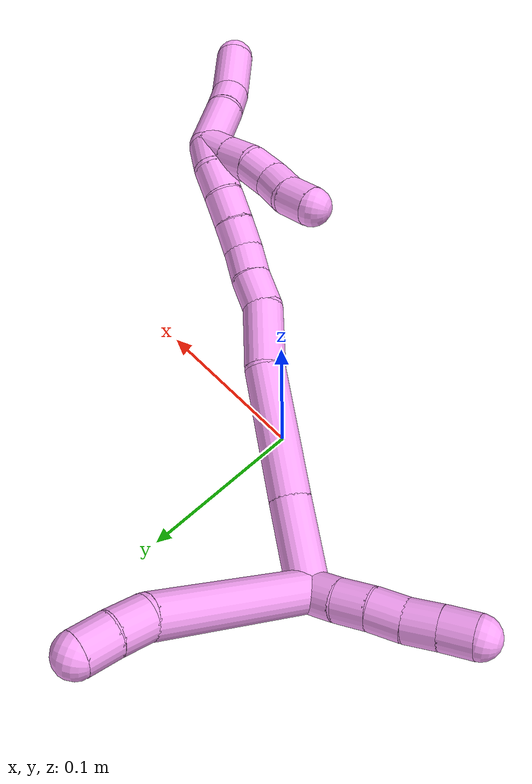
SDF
<sdf version="1.7">
 <world name="default">
  <model name="photoneo_s_sensor">
   <static>1</static>
   <pose>0 0 2 1.57079 1.57079 3.14159</pose>
   <link name="link">
    <inertial><mass>0.1</mass></inertial>
    <sensor name="sensor" type="depth">
     <update_rate>30</update_rate>
     <camera>
      <horizontal_fov>1.22</horizontal_fov>
      <image><width>1920</width><height>1200</height><format>B8G8R8</format></image>
      <clip><near>0.1</near><far>4</far></clip>
      <depth_camera><output>points</output></depth_camera>
     </camera>
     <plugin name="camera_plugin" filename="libgazebo_ros_depth_camera.so">
      <baseline>0.2</baseline>
      <alwaysOn>1</alwaysOn>
      <updateRate>0.0</updateRate>
      <cameraName>camera_ir</cameraName>
      <imageTopicName>/camera/color/image_raw</imageTopicName>
      <cameraInfoTopicName>/camera/color/camera_info</cameraInfoTopicName>
      <depthImageTopicName>/camera/depth/image_raw</depthImageTopicName>
      <depthImageCameraInfoTopicName>/camera/depth/camera_info</depthImageCameraInfoTopicName>
      <pointCloudTopicName>/camera/depth/points</pointCloudTopicName>
      <frameName>fr_optical</frameName>
      <pointCloudCutoff>0.1</pointCloudCutoff>
      <pointCloudCutoffMax>2.0</pointCloudCutoffMax>
      <distortionK1>0</distortionK1>
      <distortionK2>0</distortionK2>
      <distortionK3>0</distortionK3>
      <distortionT1>0</distortionT1>
      <distortionT2>0</distortionT2>
      <CxPrime>0</CxPrime>
      <Cx>0</Cx>
      <Cy>0</Cy>
      <focalLength>0</focalLength>
      <hackBaseline>0</hackBaseline>
     </plugin>
    </sensor>
   </link>
  </model>
  <model name="bin">
   <static>1</static>
   <link name="bottom">
    <collision name="collision-bottom">
     <pose>0 0 -0.01 0 -0 0</pose>
     <geometry><box><size>0.8 0.6 0.02</size></box></geometry>
     <surface>
      <friction><ode><mu>100</mu><mu2>100</mu2></ode></friction>
      <contact><collide_bitmask>65535</collide_bitmask></contact>
     </surface>
    </collision>
   </link>
   <link name="west_wall">
    <collision name="collision-west_wall">
     <pose>-0.41 0 0.1 0 -0 0</pose>
     <geometry><box><size>0.02 0.6 0.2</size></box></geometry>
     <surface>
      <friction><ode><mu>100</mu><mu2>100</mu2></ode></friction>
      <contact><collide_bitmask>65535</collide_bitmask></contact>
     </surface>
    </collision>
   </link>
   <link name="east_wall">
    <collision name="collision-east_wall">
     <pose>0.41 0 0.1 0 -0 0</pose>
     <geometry><box><size>0.02 0.6 0.2</size></box></geometry>
     <surface>
      <friction><ode><mu>100</mu><mu2>100</mu2></ode></friction>
      <contact><collide_bitmask>65535</collide_bitmask></contact>
     </surface>
    </collision>
   </link>
   <link name="south_wall">
    <collision name="collision-south_wall">
     <pose>0 -0.31 0.1 0 -0 0</pose>
     <geometry><box><size>0.8 0.02 0.2</size></box></geometry>
     <surface>
      <friction><ode><mu>100</mu><mu2>100</mu2></ode></friction>
      <contact><collide_bitmask>65535</collide_bitmask></contact>
     </surface>
    </collision>
   </link>
   <link name="north_wall">
    <collision name="collision-north_wall">
     <pose>0 0.31 0.1 0 -0 0</pose>
     <geometry><box><size>0.8 0.02 0.2</size></box></geometry>
     <surface>
      <friction><ode><mu>100</mu><mu2>100</mu2></ode></friction>
      <contact><collide_bitmask>65535</collide_bitmask></contact>
     </surface>
    </collision>
   </link>
  </model>
  <model name="4">
   <static>0</static>
   <link name="4">
    <collision name="collision-cylinder-e_1_2_8">
     <pose>-0.045227 -0.013849 0.027958 0.459909 -0.96691 -0.244578</pose>
     <geometry><cylinder><radius>0.0125</radius><length>0.109889</length></cylinder></geometry>
     <surface>
      <friction><ode><mu>1.16</mu><mu2>1.16</mu2><slip1>0</slip1><slip2>0</slip2></ode></friction>
      <contact><ode><kp>1e+06</kp><kd>1</kd><max_vel>0</max_vel><min_depth>0.001</min_depth></ode></contact>
     </surface>
    </collision>
    <visual name="visual-cylinder-e_1_2_8">
     <pose>-0.045227 -0.013849 0.027958 0.459909 -0.96691 -0.244578</pose>
     <geometry><cylinder><radius>0.0125</radius><length>0.109889</length></cylinder></geometry>
     <material><ambient>1 0.65098 0.996078 1</ambient></material>
    </visual>
    <collision name="collision-cylinder-e_2_8_9">
     <pose>-0.099414 -0.027615 0.060436 -0.018207 -1.10357 0.011208</pose>
     <geometry><cylinder><radius>0.0125</radius><length>0.020073</length></cylinder></geometry>
     <surface>
      <friction><ode><mu>1.16</mu><mu2>1.16</mu2><slip1>0</slip1><slip2>0</slip2></ode></friction>
      <contact><ode><kp>1e+06</kp><kd>1</kd><max_vel>0</max_vel><min_depth>0.001</min_depth></ode></contact>
     </surface>
    </collision>
    <visual name="visual-cylinder-e_2_8_9">
     <pose>-0.099414 -0.027615 0.060436 -0.018207 -1.10357 0.011208</pose>
     <geometry><cylinder><radius>0.0125</radius><length>0.020073</length></cylinder></geometry>
     <material><ambient>1 0.65098 0.996078 1</ambient></material>
    </visual>
    <collision name="collision-cylinder-e_3_9_6">
     <pose>-0.117211 -0.026397 0.06954 -0.242767 -1.07995 0.145972</pose>
     <geometry><cylinder><radius>0.0125</radius><length>0.020038</length></cylinder></geometry>
     <surface>
      <friction><ode><mu>1.16</mu><mu2>1.16</mu2><slip1>0</slip1><slip2>0</slip2></ode></friction>
      <contact><ode><kp>1e+06</kp><kd>1</kd><max_vel>0</max_vel><min_depth>0.001</min_depth></ode></contact>
     </surface>
    </collision>
    <visual name="visual-cylinder-e_3_9_6">
     <pose>-0.117211 -0.026397 0.06954 -0.242767 -1.07995 0.145972</pose>
     <geometry><cylinder><radius>0.0125</radius><length>0.020038</length></cylinder></geometry>
     <material><ambient>1 0.65098 0.996078 1</ambient></material>
    </visual>
    <collision name="collision-cylinder-e_1_2_10">
     <pose>-0.002398 -0.002347 -0.00942 2.89748 -0.242116 -1.56248</pose>
     <geometry><cylinder><radius>0.0125</radius><length>0.02</length></cylinder></geometry>
     <surface>
      <friction><ode><mu>1.16</mu><mu2>1.16</mu2><slip1>0</slip1><slip2>0</slip2></ode></friction>
      <contact><ode><kp>1e+06</kp><kd>1</kd><max_vel>0</max_vel><min_depth>0.001</min_depth></ode></contact>
     </surface>
    </collision>
    <visual name="visual-cylinder-e_1_2_10">
     <pose>-0.002398 -0.002347 -0.00942 2.89748 -0.242116 -1.56248</pose>
     <geometry><cylinder><radius>0.0125</radius><length>0.02</length></cylinder></geometry>
     <material><ambient>1 0.65098 0.996078 1</ambient></material>
    </visual>
    <collision name="collision-cylinder-e_2_10_11">
     <pose>-0.006027 -0.00677 -0.028545 2.93075 -0.123499 -1.0576</pose>
     <geometry><cylinder><radius>0.0125</radius><length>0.02</length></cylinder></geometry>
     <surface>
      <friction><ode><mu>1.16</mu><mu2>1.16</mu2><slip1>0</slip1><slip2>0</slip2></ode></friction>
      <contact><ode><kp>1e+06</kp><kd>1</kd><max_vel>0</max_vel><min_depth>0.001</min_depth></ode></contact>
     </surface>
    </collision>
    <visual name="visual-cylinder-e_2_10_11">
     <pose>-0.006027 -0.00677 -0.028545 2.93075 -0.123499 -1.0576</pose>
     <geometry><cylinder><radius>0.0125</radius><length>0.02</length></cylinder></geometry>
     <material><ambient>1 0.65098 0.996078 1</ambient></material>
    </visual>
    <collision name="collision-cylinder-e_3_11_12">
     <pose>-0.008392 -0.009889 -0.04813 3.03652 -0.113569 -1.64863</pose>
     <geometry><cylinder><radius>0.0125</radius><length>0.02</length></cylinder></geometry>
     <surface>
      <friction><ode><mu>1.16</mu><mu2>1.16</mu2><slip1>0</slip1><slip2>0</slip2></ode></friction>
      <contact><ode><kp>1e+06</kp><kd>1</kd><max_vel>0</max_vel><min_depth>0.001</min_depth></ode></contact>
     </surface>
    </collision>
    <visual name="visual-cylinder-e_3_11_12">
     <pose>-0.008392 -0.009889 -0.04813 3.03652 -0.113569 -1.64863</pose>
     <geometry><cylinder><radius>0.0125</radius><length>0.02</length></cylinder></geometry>
     <material><ambient>1 0.65098 0.996078 1</ambient></material>
    </visual>
    <collision name="collision-cylinder-e_4_12_13">
     <pose>-0.010139 -0.013067 -0.067761 2.92589 -0.061354 -0.552354</pose>
     <geometry><cylinder><radius>0.0125</radius><length>0.02</length></cylinder></geometry>
     <surface>
      <friction><ode><mu>1.16</mu><mu2>1.16</mu2><slip1>0</slip1><slip2>0</slip2></ode></friction>
      <contact><ode><kp>1e+06</kp><kd>1</kd><max_vel>0</max_vel><min_depth>0.001</min_depth></ode></contact>
     </surface>
    </collision>
    <visual name="visual-cylinder-e_4_12_13">
     <pose>-0.010139 -0.013067 -0.067761 2.92589 -0.061354 -0.552354</pose>
     <geometry><cylinder><radius>0.0125</radius><length>0.02</length></cylinder></geometry>
     <material><ambient>1 0.65098 0.996078 1</ambient></material>
    </visual>
    <collision name="collision-cylinder-e_5_13_5">
     <pose>-0.011682 -0.017122 -0.08728 2.94771 -0.093213 -0.89442</pose>
     <geometry><cylinder><radius>0.0125</radius><length>0.02</length></cylinder></geometry>
     <surface>
      <friction><ode><mu>1.16</mu><mu2>1.16</mu2><slip1>0</slip1><slip2>0</slip2></ode></friction>
      <contact><ode><kp>1e+06</kp><kd>1</kd><max_vel>0</max_vel><min_depth>0.001</min_depth></ode></contact>
     </surface>
    </collision>
    <visual name="visual-cylinder-e_5_13_5">
     <pose>-0.011682 -0.017122 -0.08728 2.94771 -0.093213 -0.89442</pose>
     <geometry><cylinder><radius>0.0125</radius><length>0.02</length></cylinder></geometry>
     <material><ambient>1 0.65098 0.996078 1</ambient></material>
    </visual>
    <collision name="collision-cylinder-e_1_2_14">
     <pose>0.016485 -0.015362 0.013823 0.838075 0.673321 0.309289</pose>
     <geometry><cylinder><radius>0.0125</radius><length>0.05287</length></cylinder></geometry>
     <surface>
      <friction><ode><mu>1.16</mu><mu2>1.16</mu2><slip1>0</slip1><slip2>0</slip2></ode></friction>
      <contact><ode><kp>1e+06</kp><kd>1</kd><max_vel>0</max_vel><min_depth>0.001</min_depth></ode></contact>
     </surface>
    </collision>
    <visual name="visual-cylinder-e_1_2_14">
     <pose>0.016485 -0.015362 0.013823 0.838075 0.673321 0.309289</pose>
     <geometry><cylinder><radius>0.0125</radius><length>0.05287</length></cylinder></geometry>
     <material><ambient>1 0.65098 0.996078 1</ambient></material>
    </visual>
    <collision name="collision-cylinder-e_2_14_15">
     <pose>0.05743 -0.055745 0.048398 0.878404 0.645095 0.311493</pose>
     <geometry><cylinder><radius>0.0125</radius><length>0.081365</length></cylinder></geometry>
     <surface>
      <friction><ode><mu>1.16</mu><mu2>1.16</mu2><slip1>0</slip1><slip2>0</slip2></ode></friction>
      <contact><ode><kp>1e+06</kp><kd>1</kd><max_vel>0</max_vel><min_depth>0.001</min_depth></ode></contact>
     </surface>
    </collision>
    <visual name="visual-cylinder-e_2_14_15">
     <pose>0.05743 -0.055745 0.048398 0.878404 0.645095 0.311493</pose>
     <geometry><cylinder><radius>0.0125</radius><length>0.081365</length></cylinder></geometry>
     <material><ambient>1 0.65098 0.996078 1</ambient></material>
    </visual>
    <collision name="collision-cylinder-e_3_15_16">
     <pose>0.097961 -0.092106 0.077805 0.918888 0.844813 0.437628</pose>
     <geometry><cylinder><radius>0.0125</radius><length>0.042974</length></cylinder></geometry>
     <surface>
      <friction><ode><mu>1.16</mu><mu2>1.16</mu2><slip1>0</slip1><slip2>0</slip2></ode></friction>
      <contact><ode><kp>1e+06</kp><kd>1</kd><max_vel>0</max_vel><min_depth>0.001</min_depth></ode></contact>
     </surface>
    </collision>
    <visual name="visual-cylinder-e_3_15_16">
     <pose>0.097961 -0.092106 0.077805 0.918888 0.844813 0.437628</pose>
     <geometry><cylinder><radius>0.0125</radius><length>0.042974</length></cylinder></geometry>
     <material><ambient>1 0.65098 0.996078 1</ambient></material>
    </visual>
    <collision name="collision-cylinder-e_4_16_17">
     <pose>0.120147 -0.10919 0.093677 0.672236 0.585544 0.209854</pose>
     <geometry><cylinder><radius>0.0125</radius><length>0.022138</length></cylinder></geometry>
     <surface>
      <friction><ode><mu>1.16</mu><mu2>1.16</mu2><slip1>0</slip1><slip2>0</slip2></ode></friction>
      <contact><ode><kp>1e+06</kp><kd>1</kd><max_vel>0</max_vel><min_depth>0.001</min_depth></ode></contact>
     </surface>
    </collision>
    <visual name="visual-cylinder-e_4_16_17">
     <pose>0.120147 -0.10919 0.093677 0.672236 0.585544 0.209854</pose>
     <geometry><cylinder><radius>0.0125</radius><length>0.022138</length></cylinder></geometry>
     <material><ambient>1 0.65098 0.996078 1</ambient></material>
    </visual>
    <collision name="collision-cylinder-e_5_17_18">
     <pose>0.132789 -0.120245 0.106797 0.732655 0.687904 0.273124</pose>
     <geometry><cylinder><radius>0.0125</radius><length>0.02055</length></cylinder></geometry>
     <surface>
      <friction><ode><mu>1.16</mu><mu2>1.16</mu2><slip1>0</slip1><slip2>0</slip2></ode></friction>
      <contact><ode><kp>1e+06</kp><kd>1</kd><max_vel>0</max_vel><min_depth>0.001</min_depth></ode></contact>
     </surface>
    </collision>
    <visual name="visual-cylinder-e_5_17_18">
     <pose>0.132789 -0.120245 0.106797 0.732655 0.687904 0.273124</pose>
     <geometry><cylinder><radius>0.0125</radius><length>0.02055</length></cylinder></geometry>
     <material><ambient>1 0.65098 0.996078 1</ambient></material>
    </visual>
    <collision name="collision-cylinder-e_6_18_19">
     <pose>0.143147 -0.132723 0.118604 0.881666 0.391517 0.18657</pose>
     <geometry><cylinder><radius>0.0125</radius><length>0.020097</length></cylinder></geometry>
     <surface>
      <friction><ode><mu>1.16</mu><mu2>1.16</mu2><slip1>0</slip1><slip2>0</slip2></ode></friction>
      <contact><ode><kp>1e+06</kp><kd>1</kd><max_vel>0</max_vel><min_depth>0.001</min_depth></ode></contact>
     </surface>
    </collision>
    <visual name="visual-cylinder-e_6_18_19">
     <pose>0.143147 -0.132723 0.118604 0.881666 0.391517 0.18657</pose>
     <geometry><cylinder><radius>0.0125</radius><length>0.020097</length></cylinder></geometry>
     <material><ambient>1 0.65098 0.996078 1</ambient></material>
    </visual>
    <collision name="collision-cylinder-e_7_19_20">
     <pose>0.151188 -0.146583 0.130639 0.829194 0.434099 0.193502</pose>
     <geometry><cylinder><radius>0.0125</radius><length>0.020003</length></cylinder></geometry>
     <surface>
      <friction><ode><mu>1.16</mu><mu2>1.16</mu2><slip1>0</slip1><slip2>0</slip2></ode></friction>
      <contact><ode><kp>1e+06</kp><kd>1</kd><max_vel>0</max_vel><min_depth>0.001</min_depth></ode></contact>
     </surface>
    </collision>
    <visual name="visual-cylinder-e_7_19_20">
     <pose>0.151188 -0.146583 0.130639 0.829194 0.434099 0.193502</pose>
     <geometry><cylinder><radius>0.0125</radius><length>0.020003</length></cylinder></geometry>
     <material><ambient>1 0.65098 0.996078 1</ambient></material>
    </visual>
    <collision name="collision-cylinder-e_8_20_21">
     <pose>0.160452 -0.159035 0.14319 0.731269 0.530204 0.207137</pose>
     <geometry><cylinder><radius>0.0125</radius><length>0.02</length></cylinder></geometry>
     <surface>
      <friction><ode><mu>1.16</mu><mu2>1.16</mu2><slip1>0</slip1><slip2>0</slip2></ode></friction>
      <contact><ode><kp>1e+06</kp><kd>1</kd><max_vel>0</max_vel><min_depth>0.001</min_depth></ode></contact>
     </surface>
    </collision>
    <visual name="visual-cylinder-e_8_20_21">
     <pose>0.160452 -0.159035 0.14319 0.731269 0.530204 0.207137</pose>
     <geometry><cylinder><radius>0.0125</radius><length>0.02</length></cylinder></geometry>
     <material><ambient>1 0.65098 0.996078 1</ambient></material>
    </visual>
    <collision name="collision-cylinder-e_9_21_1">
     <pose>0.172581 -0.169214 0.155132 0.674919 0.785509 0.288703</pose>
     <geometry><cylinder><radius>0.0125</radius><length>0.020002</length></cylinder></geometry>
     <surface>
      <friction><ode><mu>1.16</mu><mu2>1.16</mu2><slip1>0</slip1><slip2>0</slip2></ode></friction>
      <contact><ode><kp>1e+06</kp><kd>1</kd><max_vel>0</max_vel><min_depth>0.001</min_depth></ode></contact>
     </surface>
    </collision>
    <visual name="visual-cylinder-e_9_21_1">
     <pose>0.172581 -0.169214 0.155132 0.674919 0.785509 0.288703</pose>
     <geometry><cylinder><radius>0.0125</radius><length>0.020002</length></cylinder></geometry>
     <material><ambient>1 0.65098 0.996078 1</ambient></material>
    </visual>
    <collision name="collision-cylinder-e_1_1_22">
     <pose>0.196728 -0.181034 0.163337 1.22284 1.13873 0.84356</pose>
     <geometry><cylinder><radius>0.0125</radius><length>0.037605</length></cylinder></geometry>
     <surface>
      <friction><ode><mu>1.16</mu><mu2>1.16</mu2><slip1>0</slip1><slip2>0</slip2></ode></friction>
      <contact><ode><kp>1e+06</kp><kd>1</kd><max_vel>0</max_vel><min_depth>0.001</min_depth></ode></contact>
     </surface>
    </collision>
    <visual name="visual-cylinder-e_1_1_22">
     <pose>0.196728 -0.181034 0.163337 1.22284 1.13873 0.84356</pose>
     <geometry><cylinder><radius>0.0125</radius><length>0.037605</length></cylinder></geometry>
     <material><ambient>1 0.65098 0.996078 1</ambient></material>
    </visual>
    <collision name="collision-cylinder-e_2_22_23">
     <pose>0.225205 -0.190717 0.169189 0.624125 1.24099 0.453182</pose>
     <geometry><cylinder><radius>0.0125</radius><length>0.024104</length></cylinder></geometry>
     <surface>
      <friction><ode><mu>1.16</mu><mu2>1.16</mu2><slip1>0</slip1><slip2>0</slip2></ode></friction>
      <contact><ode><kp>1e+06</kp><kd>1</kd><max_vel>0</max_vel><min_depth>0.001</min_depth></ode></contact>
     </surface>
    </collision>
    <visual name="visual-cylinder-e_2_22_23">
     <pose>0.225205 -0.190717 0.169189 0.624125 1.24099 0.453182</pose>
     <geometry><cylinder><radius>0.0125</radius><length>0.024104</length></cylinder></geometry>
     <material><ambient>1 0.65098 0.996078 1</ambient></material>
    </visual>
    <collision name="collision-cylinder-e_3_23_4">
     <pose>0.252391 -0.202026 0.178351 0.98469 0.969127 0.550422</pose>
     <geometry><cylinder><radius>0.0125</radius><length>0.038291</length></cylinder></geometry>
     <surface>
      <friction><ode><mu>1.16</mu><mu2>1.16</mu2><slip1>0</slip1><slip2>0</slip2></ode></friction>
      <contact><ode><kp>1e+06</kp><kd>1</kd><max_vel>0</max_vel><min_depth>0.001</min_depth></ode></contact>
     </surface>
    </collision>
    <visual name="visual-cylinder-e_3_23_4">
     <pose>0.252391 -0.202026 0.178351 0.98469 0.969127 0.550422</pose>
     <geometry><cylinder><radius>0.0125</radius><length>0.038291</length></cylinder></geometry>
     <material><ambient>1 0.65098 0.996078 1</ambient></material>
    </visual>
    <collision name="collision-cylinder-e_1_1_24">
     <pose>0.175948 -0.173608 0.151364 -3.13897 -0.379655 3.12796</pose>
     <geometry><cylinder><radius>0.0125</radius><length>0.02</length></cylinder></geometry>
     <surface>
      <friction><ode><mu>1.16</mu><mu2>1.16</mu2><slip1>0</slip1><slip2>0</slip2></ode></friction>
      <contact><ode><kp>1e+06</kp><kd>1</kd><max_vel>0</max_vel><min_depth>0.001</min_depth></ode></contact>
     </surface>
    </collision>
    <visual name="visual-cylinder-e_1_1_24">
     <pose>0.175948 -0.173608 0.151364 -3.13897 -0.379655 3.12796</pose>
     <geometry><cylinder><radius>0.0125</radius><length>0.02</length></cylinder></geometry>
     <material><ambient>1 0.65098 0.996078 1</ambient></material>
    </visual>
    <collision name="collision-cylinder-e_2_24_25">
     <pose>0.168568 -0.173932 0.132783 3.10414 -0.376224 -2.94547</pose>
     <geometry><cylinder><radius>0.0125</radius><length>0.02</length></cylinder></geometry>
     <surface>
      <friction><ode><mu>1.16</mu><mu2>1.16</mu2><slip1>0</slip1><slip2>0</slip2></ode></friction>
      <contact><ode><kp>1e+06</kp><kd>1</kd><max_vel>0</max_vel><min_depth>0.001</min_depth></ode></contact>
     </surface>
    </collision>
    <visual name="visual-cylinder-e_2_24_25">
     <pose>0.168568 -0.173932 0.132783 3.10414 -0.376224 -2.94547</pose>
     <geometry><cylinder><radius>0.0125</radius><length>0.02</length></cylinder></geometry>
     <material><ambient>1 0.65098 0.996078 1</ambient></material>
    </visual>
    <collision name="collision-cylinder-e_3_25_26">
     <pose>0.161241 -0.172115 0.114435 -2.9069 -0.37393 2.02703</pose>
     <geometry><cylinder><radius>0.0125</radius><length>0.02</length></cylinder></geometry>
     <surface>
      <friction><ode><mu>1.16</mu><mu2>1.16</mu2><slip1>0</slip1><slip2>0</slip2></ode></friction>
      <contact><ode><kp>1e+06</kp><kd>1</kd><max_vel>0</max_vel><min_depth>0.001</min_depth></ode></contact>
     </surface>
    </collision>
    <visual name="visual-cylinder-e_3_25_26">
     <pose>0.161241 -0.172115 0.114435 -2.9069 -0.37393 2.02703</pose>
     <geometry><cylinder><radius>0.0125</radius><length>0.02</length></cylinder></geometry>
     <material><ambient>1 0.65098 0.996078 1</ambient></material>
    </visual>
    <collision name="collision-cylinder-e_4_26_27">
     <pose>0.151618 -0.168641 0.097466 -2.97757 -0.639754 2.65514</pose>
     <geometry><cylinder><radius>0.0125</radius><length>0.02</length></cylinder></geometry>
     <surface>
      <friction><ode><mu>1.16</mu><mu2>1.16</mu2><slip1>0</slip1><slip2>0</slip2></ode></friction>
      <contact><ode><kp>1e+06</kp><kd>1</kd><max_vel>0</max_vel><min_depth>0.001</min_depth></ode></contact>
     </surface>
    </collision>
    <visual name="visual-cylinder-e_4_26_27">
     <pose>0.151618 -0.168641 0.097466 -2.97757 -0.639754 2.65514</pose>
     <geometry><cylinder><radius>0.0125</radius><length>0.02</length></cylinder></geometry>
     <material><ambient>1 0.65098 0.996078 1</ambient></material>
    </visual>
    <collision name="collision-cylinder-e_5_27_3">
     <pose>0.141757 -0.167225 0.08034 -3.1301 -0.399629 3.08488</pose>
     <geometry><cylinder><radius>0.0125</radius><length>0.02</length></cylinder></geometry>
     <surface>
      <friction><ode><mu>1.16</mu><mu2>1.16</mu2><slip1>0</slip1><slip2>0</slip2></ode></friction>
      <contact><ode><kp>1e+06</kp><kd>1</kd><max_vel>0</max_vel><min_depth>0.001</min_depth></ode></contact>
     </surface>
    </collision>
    <visual name="visual-cylinder-e_5_27_3">
     <pose>0.141757 -0.167225 0.08034 -3.1301 -0.399629 3.08488</pose>
     <geometry><cylinder><radius>0.0125</radius><length>0.02</length></cylinder></geometry>
     <material><ambient>1 0.65098 0.996078 1</ambient></material>
    </visual>
    <collision name="collision-sphere-3">
     <pose>0.137867 -0.167119 0.071128 0 -0 0</pose>
     <geometry><sphere><radius>0.0125</radius></sphere></geometry>
     <surface>
      <friction><ode><mu>1.16</mu><mu2>1.16</mu2><slip1>0</slip1><slip2>0</slip2></ode></friction>
      <contact><ode><kp>1e+06</kp><kd>1</kd><max_vel>0</max_vel><min_depth>0.001</min_depth></ode></contact>
     </surface>
    </collision>
    <visual name="visual-sphere-3">
     <pose>0.137867 -0.167119 0.071128 0 -0 0</pose>
     <geometry><sphere><radius>0.0125</radius></sphere></geometry>
     <material><ambient>1 0.65098 0.996078 1</ambient></material>
    </visual>
    <collision name="collision-sphere-27">
     <pose>0.145648 -0.167331 0.089551 0 -0 0</pose>
     <geometry><sphere><radius>0.0125</radius></sphere></geometry>
     <surface>
      <friction><ode><mu>1.16</mu><mu2>1.16</mu2><slip1>0</slip1><slip2>0</slip2></ode></friction>
      <contact><ode><kp>1e+06</kp><kd>1</kd><max_vel>0</max_vel><min_depth>0.001</min_depth></ode></contact>
     </surface>
    </collision>
    <visual name="visual-sphere-27">
     <pose>0.145648 -0.167331 0.089551 0 -0 0</pose>
     <geometry><sphere><radius>0.0125</radius></sphere></geometry>
     <material><ambient>1 0.65098 0.996078 1</ambient></material>
    </visual>
    <collision name="collision-sphere-26">
     <pose>0.157588 -0.169951 0.105381 0 -0 0</pose>
     <geometry><sphere><radius>0.0125</radius></sphere></geometry>
     <surface>
      <friction><ode><mu>1.16</mu><mu2>1.16</mu2><slip1>0</slip1><slip2>0</slip2></ode></friction>
      <contact><ode><kp>1e+06</kp><kd>1</kd><max_vel>0</max_vel><min_depth>0.001</min_depth></ode></contact>
     </surface>
    </collision>
    <visual name="visual-sphere-26">
     <pose>0.157588 -0.169951 0.105381 0 -0 0</pose>
     <geometry><sphere><radius>0.0125</radius></sphere></geometry>
     <material><ambient>1 0.65098 0.996078 1</ambient></material>
    </visual>
    <collision name="collision-sphere-25">
     <pose>0.164894 -0.17428 0.123488 0 -0 0</pose>
     <geometry><sphere><radius>0.0125</radius></sphere></geometry>
     <surface>
      <friction><ode><mu>1.16</mu><mu2>1.16</mu2><slip1>0</slip1><slip2>0</slip2></ode></friction>
      <contact><ode><kp>1e+06</kp><kd>1</kd><max_vel>0</max_vel><min_depth>0.001</min_depth></ode></contact>
     </surface>
    </collision>
    <visual name="visual-sphere-25">
     <pose>0.164894 -0.17428 0.123488 0 -0 0</pose>
     <geometry><sphere><radius>0.0125</radius></sphere></geometry>
     <material><ambient>1 0.65098 0.996078 1</ambient></material>
    </visual>
    <collision name="collision-sphere-24">
     <pose>0.172242 -0.173584 0.142077 0 -0 0</pose>
     <geometry><sphere><radius>0.0125</radius></sphere></geometry>
     <surface>
      <friction><ode><mu>1.16</mu><mu2>1.16</mu2><slip1>0</slip1><slip2>0</slip2></ode></friction>
      <contact><ode><kp>1e+06</kp><kd>1</kd><max_vel>0</max_vel><min_depth>0.001</min_depth></ode></contact>
     </surface>
    </collision>
    <visual name="visual-sphere-24">
     <pose>0.172242 -0.173584 0.142077 0 -0 0</pose>
     <geometry><sphere><radius>0.0125</radius></sphere></geometry>
     <material><ambient>1 0.65098 0.996078 1</ambient></material>
    </visual>
    <collision name="collision-sphere-4">
     <pose>0.268175 -0.211054 0.184345 0 -0 0</pose>
     <geometry><sphere><radius>0.0125</radius></sphere></geometry>
     <surface>
      <friction><ode><mu>1.16</mu><mu2>1.16</mu2><slip1>0</slip1><slip2>0</slip2></ode></friction>
      <contact><ode><kp>1e+06</kp><kd>1</kd><max_vel>0</max_vel><min_depth>0.001</min_depth></ode></contact>
     </surface>
    </collision>
    <visual name="visual-sphere-4">
     <pose>0.268175 -0.211054 0.184345 0 -0 0</pose>
     <geometry><sphere><radius>0.0125</radius></sphere></geometry>
     <material><ambient>1 0.65098 0.996078 1</ambient></material>
    </visual>
    <collision name="collision-sphere-23">
     <pose>0.236608 -0.192998 0.172357 0 -0 0</pose>
     <geometry><sphere><radius>0.0125</radius></sphere></geometry>
     <surface>
      <friction><ode><mu>1.16</mu><mu2>1.16</mu2><slip1>0</slip1><slip2>0</slip2></ode></friction>
      <contact><ode><kp>1e+06</kp><kd>1</kd><max_vel>0</max_vel><min_depth>0.001</min_depth></ode></contact>
     </surface>
    </collision>
    <visual name="visual-sphere-23">
     <pose>0.236608 -0.192998 0.172357 0 -0 0</pose>
     <geometry><sphere><radius>0.0125</radius></sphere></geometry>
     <material><ambient>1 0.65098 0.996078 1</ambient></material>
    </visual>
    <collision name="collision-sphere-22">
     <pose>0.213803 -0.188436 0.166022 0 -0 0</pose>
     <geometry><sphere><radius>0.0125</radius></sphere></geometry>
     <surface>
      <friction><ode><mu>1.16</mu><mu2>1.16</mu2><slip1>0</slip1><slip2>0</slip2></ode></friction>
      <contact><ode><kp>1e+06</kp><kd>1</kd><max_vel>0</max_vel><min_depth>0.001</min_depth></ode></contact>
     </surface>
    </collision>
    <visual name="visual-sphere-22">
     <pose>0.213803 -0.188436 0.166022 0 -0 0</pose>
     <geometry><sphere><radius>0.0125</radius></sphere></geometry>
     <material><ambient>1 0.65098 0.996078 1</ambient></material>
    </visual>
    <collision name="collision-sphere-1">
     <pose>0.179654 -0.173632 0.160652 0 -0 0</pose>
     <geometry><sphere><radius>0.0125</radius></sphere></geometry>
     <surface>
      <friction><ode><mu>1.16</mu><mu2>1.16</mu2><slip1>0</slip1><slip2>0</slip2></ode></friction>
      <contact><ode><kp>1e+06</kp><kd>1</kd><max_vel>0</max_vel><min_depth>0.001</min_depth></ode></contact>
     </surface>
    </collision>
    <visual name="visual-sphere-1">
     <pose>0.179654 -0.173632 0.160652 0 -0 0</pose>
     <geometry><sphere><radius>0.0125</radius></sphere></geometry>
     <material><ambient>1 0.65098 0.996078 1</ambient></material>
    </visual>
    <collision name="collision-sphere-21">
     <pose>0.165509 -0.164796 0.149611 0 -0 0</pose>
     <geometry><sphere><radius>0.0125</radius></sphere></geometry>
     <surface>
      <friction><ode><mu>1.16</mu><mu2>1.16</mu2><slip1>0</slip1><slip2>0</slip2></ode></friction>
      <contact><ode><kp>1e+06</kp><kd>1</kd><max_vel>0</max_vel><min_depth>0.001</min_depth></ode></contact>
     </surface>
    </collision>
    <visual name="visual-sphere-21">
     <pose>0.165509 -0.164796 0.149611 0 -0 0</pose>
     <geometry><sphere><radius>0.0125</radius></sphere></geometry>
     <material><ambient>1 0.65098 0.996078 1</ambient></material>
    </visual>
    <collision name="collision-sphere-11">
     <pose>-0.007259 -0.008847 -0.038249 0 -0 0</pose>
     <geometry><sphere><radius>0.0125</radius></sphere></geometry>
     <surface>
      <friction><ode><mu>1.16</mu><mu2>1.16</mu2><slip1>0</slip1><slip2>0</slip2></ode></friction>
      <contact><ode><kp>1e+06</kp><kd>1</kd><max_vel>0</max_vel><min_depth>0.001</min_depth></ode></contact>
     </surface>
    </collision>
    <visual name="visual-sphere-11">
     <pose>-0.007259 -0.008847 -0.038249 0 -0 0</pose>
     <geometry><sphere><radius>0.0125</radius></sphere></geometry>
     <material><ambient>1 0.65098 0.996078 1</ambient></material>
    </visual>
    <collision name="collision-sphere-10">
     <pose>-0.004795 -0.004693 -0.018841 0 -0 0</pose>
     <geometry><sphere><radius>0.0125</radius></sphere></geometry>
     <surface>
      <friction><ode><mu>1.16</mu><mu2>1.16</mu2><slip1>0</slip1><slip2>0</slip2></ode></friction>
      <contact><ode><kp>1e+06</kp><kd>1</kd><max_vel>0</max_vel><min_depth>0.001</min_depth></ode></contact>
     </surface>
    </collision>
    <visual name="visual-sphere-10">
     <pose>-0.004795 -0.004693 -0.018841 0 -0 0</pose>
     <geometry><sphere><radius>0.0125</radius></sphere></geometry>
     <material><ambient>1 0.65098 0.996078 1</ambient></material>
    </visual>
    <collision name="collision-sphere-6">
     <pose>-0.126047 -0.025262 0.074124 0 -0 0</pose>
     <geometry><sphere><radius>0.0125</radius></sphere></geometry>
     <surface>
      <friction><ode><mu>1.16</mu><mu2>1.16</mu2><slip1>0</slip1><slip2>0</slip2></ode></friction>
      <contact><ode><kp>1e+06</kp><kd>1</kd><max_vel>0</max_vel><min_depth>0.001</min_depth></ode></contact>
     </surface>
    </collision>
    <visual name="visual-sphere-6">
     <pose>-0.126047 -0.025262 0.074124 0 -0 0</pose>
     <geometry><sphere><radius>0.0125</radius></sphere></geometry>
     <material><ambient>1 0.65098 0.996078 1</ambient></material>
    </visual>
    <collision name="collision-sphere-9">
     <pose>-0.108375 -0.027533 0.064956 0 -0 0</pose>
     <geometry><sphere><radius>0.0125</radius></sphere></geometry>
     <surface>
      <friction><ode><mu>1.16</mu><mu2>1.16</mu2><slip1>0</slip1><slip2>0</slip2></ode></friction>
      <contact><ode><kp>1e+06</kp><kd>1</kd><max_vel>0</max_vel><min_depth>0.001</min_depth></ode></contact>
     </surface>
    </collision>
    <visual name="visual-sphere-9">
     <pose>-0.108375 -0.027533 0.064956 0 -0 0</pose>
     <geometry><sphere><radius>0.0125</radius></sphere></geometry>
     <material><ambient>1 0.65098 0.996078 1</ambient></material>
    </visual>
    <collision name="collision-sphere-2">
     <geometry><sphere><radius>0.0125</radius></sphere></geometry>
     <surface>
      <friction><ode><mu>1.16</mu><mu2>1.16</mu2><slip1>0</slip1><slip2>0</slip2></ode></friction>
      <contact><ode><kp>1e+06</kp><kd>1</kd><max_vel>0</max_vel><min_depth>0.001</min_depth></ode></contact>
     </surface>
    </collision>
    <visual name="visual-sphere-2">
     <geometry><sphere><radius>0.0125</radius></sphere></geometry>
     <material><ambient>1 0.65098 0.996078 1</ambient></material>
    </visual>
    <collision name="collision-sphere-19">
     <pose>0.146981 -0.139892 0.12451 0 -0 0</pose>
     <geometry><sphere><radius>0.0125</radius></sphere></geometry>
     <surface>
      <friction><ode><mu>1.16</mu><mu2>1.16</mu2><slip1>0</slip1><slip2>0</slip2></ode></friction>
      <contact><ode><kp>1e+06</kp><kd>1</kd><max_vel>0</max_vel><min_depth>0.001</min_depth></ode></contact>
     </surface>
    </collision>
    <visual name="visual-sphere-19">
     <pose>0.146981 -0.139892 0.12451 0 -0 0</pose>
     <geometry><sphere><radius>0.0125</radius></sphere></geometry>
     <material><ambient>1 0.65098 0.996078 1</ambient></material>
    </visual>
    <collision name="collision-sphere-8">
     <pose>-0.090453 -0.027697 0.055916 0 -0 0</pose>
     <geometry><sphere><radius>0.0125</radius></sphere></geometry>
     <surface>
      <friction><ode><mu>1.16</mu><mu2>1.16</mu2><slip1>0</slip1><slip2>0</slip2></ode></friction>
      <contact><ode><kp>1e+06</kp><kd>1</kd><max_vel>0</max_vel><min_depth>0.001</min_depth></ode></contact>
     </surface>
    </collision>
    <visual name="visual-sphere-8">
     <pose>-0.090453 -0.027697 0.055916 0 -0 0</pose>
     <geometry><sphere><radius>0.0125</radius></sphere></geometry>
     <material><ambient>1 0.65098 0.996078 1</ambient></material>
    </visual>
    <collision name="collision-sphere-12">
     <pose>-0.009525 -0.010931 -0.058011 0 -0 0</pose>
     <geometry><sphere><radius>0.0125</radius></sphere></geometry>
     <surface>
      <friction><ode><mu>1.16</mu><mu2>1.16</mu2><slip1>0</slip1><slip2>0</slip2></ode></friction>
      <contact><ode><kp>1e+06</kp><kd>1</kd><max_vel>0</max_vel><min_depth>0.001</min_depth></ode></contact>
     </surface>
    </collision>
    <visual name="visual-sphere-12">
     <pose>-0.009525 -0.010931 -0.058011 0 -0 0</pose>
     <geometry><sphere><radius>0.0125</radius></sphere></geometry>
     <material><ambient>1 0.65098 0.996078 1</ambient></material>
    </visual>
    <collision name="collision-sphere-13">
     <pose>-0.010752 -0.015204 -0.07751 0 -0 0</pose>
     <geometry><sphere><radius>0.0125</radius></sphere></geometry>
     <surface>
      <friction><ode><mu>1.16</mu><mu2>1.16</mu2><slip1>0</slip1><slip2>0</slip2></ode></friction>
      <contact><ode><kp>1e+06</kp><kd>1</kd><max_vel>0</max_vel><min_depth>0.001</min_depth></ode></contact>
     </surface>
    </collision>
    <visual name="visual-sphere-13">
     <pose>-0.010752 -0.015204 -0.07751 0 -0 0</pose>
     <geometry><sphere><radius>0.0125</radius></sphere></geometry>
     <material><ambient>1 0.65098 0.996078 1</ambient></material>
    </visual>
    <collision name="collision-sphere-5">
     <pose>-0.012613 -0.01904 -0.097051 0 -0 0</pose>
     <geometry><sphere><radius>0.0125</radius></sphere></geometry>
     <surface>
      <friction><ode><mu>1.16</mu><mu2>1.16</mu2><slip1>0</slip1><slip2>0</slip2></ode></friction>
      <contact><ode><kp>1e+06</kp><kd>1</kd><max_vel>0</max_vel><min_depth>0.001</min_depth></ode></contact>
     </surface>
    </collision>
    <visual name="visual-sphere-5">
     <pose>-0.012613 -0.01904 -0.097051 0 -0 0</pose>
     <geometry><sphere><radius>0.0125</radius></sphere></geometry>
     <material><ambient>1 0.65098 0.996078 1</ambient></material>
    </visual>
    <collision name="collision-sphere-14">
     <pose>0.032969 -0.030724 0.027647 0 -0 0</pose>
     <geometry><sphere><radius>0.0125</radius></sphere></geometry>
     <surface>
      <friction><ode><mu>1.16</mu><mu2>1.16</mu2><slip1>0</slip1><slip2>0</slip2></ode></friction>
      <contact><ode><kp>1e+06</kp><kd>1</kd><max_vel>0</max_vel><min_depth>0.001</min_depth></ode></contact>
     </surface>
    </collision>
    <visual name="visual-sphere-14">
     <pose>0.032969 -0.030724 0.027647 0 -0 0</pose>
     <geometry><sphere><radius>0.0125</radius></sphere></geometry>
     <material><ambient>1 0.65098 0.996078 1</ambient></material>
    </visual>
    <collision name="collision-sphere-15">
     <pose>0.081892 -0.080767 0.06915 0 -0 0</pose>
     <geometry><sphere><radius>0.0125</radius></sphere></geometry>
     <surface>
      <friction><ode><mu>1.16</mu><mu2>1.16</mu2><slip1>0</slip1><slip2>0</slip2></ode></friction>
      <contact><ode><kp>1e+06</kp><kd>1</kd><max_vel>0</max_vel><min_depth>0.001</min_depth></ode></contact>
     </surface>
    </collision>
    <visual name="visual-sphere-15">
     <pose>0.081892 -0.080767 0.06915 0 -0 0</pose>
     <geometry><sphere><radius>0.0125</radius></sphere></geometry>
     <material><ambient>1 0.65098 0.996078 1</ambient></material>
    </visual>
    <collision name="collision-sphere-16">
     <pose>0.11403 -0.103446 0.086459 0 -0 0</pose>
     <geometry><sphere><radius>0.0125</radius></sphere></geometry>
     <surface>
      <friction><ode><mu>1.16</mu><mu2>1.16</mu2><slip1>0</slip1><slip2>0</slip2></ode></friction>
      <contact><ode><kp>1e+06</kp><kd>1</kd><max_vel>0</max_vel><min_depth>0.001</min_depth></ode></contact>
     </surface>
    </collision>
    <visual name="visual-sphere-16">
     <pose>0.11403 -0.103446 0.086459 0 -0 0</pose>
     <geometry><sphere><radius>0.0125</radius></sphere></geometry>
     <material><ambient>1 0.65098 0.996078 1</ambient></material>
    </visual>
    <collision name="collision-sphere-17">
     <pose>0.126265 -0.114935 0.100895 0 -0 0</pose>
     <geometry><sphere><radius>0.0125</radius></sphere></geometry>
     <surface>
      <friction><ode><mu>1.16</mu><mu2>1.16</mu2><slip1>0</slip1><slip2>0</slip2></ode></friction>
      <contact><ode><kp>1e+06</kp><kd>1</kd><max_vel>0</max_vel><min_depth>0.001</min_depth></ode></contact>
     </surface>
    </collision>
    <visual name="visual-sphere-17">
     <pose>0.126265 -0.114935 0.100895 0 -0 0</pose>
     <geometry><sphere><radius>0.0125</radius></sphere></geometry>
     <material><ambient>1 0.65098 0.996078 1</ambient></material>
    </visual>
    <collision name="collision-sphere-18">
     <pose>0.139313 -0.125554 0.112698 0 -0 0</pose>
     <geometry><sphere><radius>0.0125</radius></sphere></geometry>
     <surface>
      <friction><ode><mu>1.16</mu><mu2>1.16</mu2><slip1>0</slip1><slip2>0</slip2></ode></friction>
      <contact><ode><kp>1e+06</kp><kd>1</kd><max_vel>0</max_vel><min_depth>0.001</min_depth></ode></contact>
     </surface>
    </collision>
    <visual name="visual-sphere-18">
     <pose>0.139313 -0.125554 0.112698 0 -0 0</pose>
     <geometry><sphere><radius>0.0125</radius></sphere></geometry>
     <material><ambient>1 0.65098 0.996078 1</ambient></material>
    </visual>
    <collision name="collision-sphere-20">
     <pose>0.155394 -0.153273 0.136768 0 -0 0</pose>
     <geometry><sphere><radius>0.0125</radius></sphere></geometry>
     <surface>
      <friction><ode><mu>1.16</mu><mu2>1.16</mu2><slip1>0</slip1><slip2>0</slip2></ode></friction>
      <contact><ode><kp>1e+06</kp><kd>1</kd><max_vel>0</max_vel><min_depth>0.001</min_depth></ode></contact>
     </surface>
    </collision>
    <visual name="visual-sphere-20">
     <pose>0.155394 -0.153273 0.136768 0 -0 0</pose>
     <geometry><sphere><radius>0.0125</radius></sphere></geometry>
     <material><ambient>1 0.65098 0.996078 1</ambient></material>
    </visual>
    <inertial>
     <pose>0.074788 -0.088266 0.070237 0 -0 0</pose>
     <mass>0.75</mass>
     <inertia>
      <ixx>0.000137</ixx>
      <ixy>0</ixy>
      <ixz>0</ixz>
      <iyy>0.000174</iyy>
      <iyz>0</iyz>
      <izz>0.000128</izz>
     </inertia>
    </inertial>
   </link>
   <pose>-0.084644 0.059165 0.011497 -1.66231 0.498982 -1.18029</pose>
  </model>
 </world>
</sdf>
